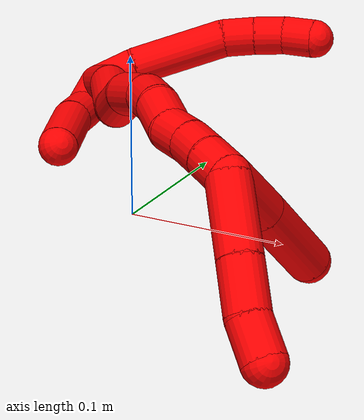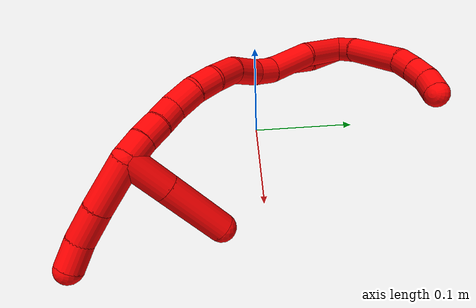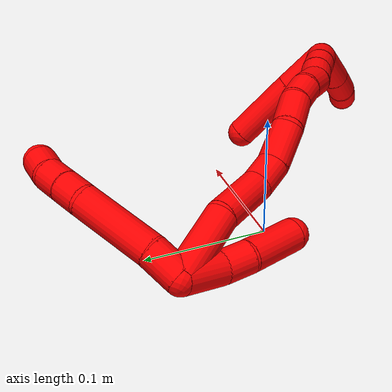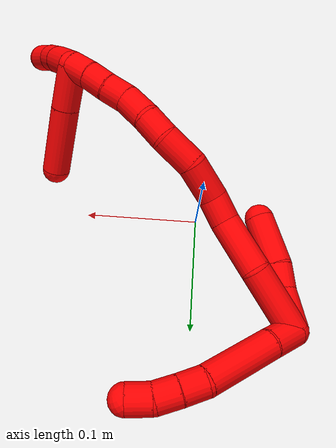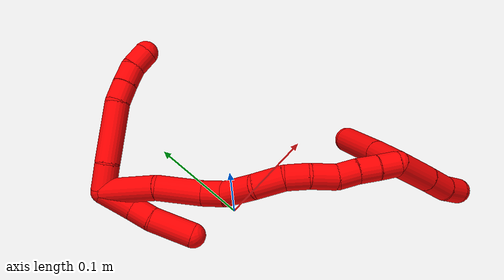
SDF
<sdf version="1.7">
 <world name="default">
  <model name="2">
   <static>0</static>
   <link name="2">
    <collision name="collision-cylinder-e_1_2_8">
     <pose>0.006121 0.010923 0.005271 -1.1212 0.467395 -0.296689</pose>
     <geometry><cylinder><radius>0.0125</radius><length>0.02717</length></cylinder></geometry>
     <surface>
      <friction><ode><mu>1.16</mu><mu2>1.16</mu2><slip1>0</slip1><slip2>0</slip2></ode></friction>
      <contact><ode><kp>1e+06</kp><kd>1</kd><max_vel>0</max_vel><min_depth>0.001</min_depth></ode></contact>
     </surface>
    </collision>
    <visual name="visual-cylinder-e_1_2_8">
     <pose>0.006121 0.010923 0.005271 -1.1212 0.467395 -0.296689</pose>
     <geometry><cylinder><radius>0.0125</radius><length>0.02717</length></cylinder></geometry>
     <material><ambient>1 0 0 1</ambient></material>
    </visual>
    <collision name="collision-cylinder-e_2_8_9">
     <pose>0.029837 0.045244 0.020459 -1.1699 0.605565 -0.408012</pose>
     <geometry><cylinder><radius>0.0125</radius><length>0.061819</length></cylinder></geometry>
     <surface>
      <friction><ode><mu>1.16</mu><mu2>1.16</mu2><slip1>0</slip1><slip2>0</slip2></ode></friction>
      <contact><ode><kp>1e+06</kp><kd>1</kd><max_vel>0</max_vel><min_depth>0.001</min_depth></ode></contact>
     </surface>
    </collision>
    <visual name="visual-cylinder-e_2_8_9">
     <pose>0.029837 0.045244 0.020459 -1.1699 0.605565 -0.408012</pose>
     <geometry><cylinder><radius>0.0125</radius><length>0.061819</length></cylinder></geometry>
     <material><ambient>1 0 0 1</ambient></material>
    </visual>
    <collision name="collision-cylinder-e_3_9_10">
     <pose>0.054912 0.074431 0.03426 -0.97996 0.82065 -0.455976</pose>
     <geometry><cylinder><radius>0.0125</radius><length>0.02045</length></cylinder></geometry>
     <surface>
      <friction><ode><mu>1.16</mu><mu2>1.16</mu2><slip1>0</slip1><slip2>0</slip2></ode></friction>
      <contact><ode><kp>1e+06</kp><kd>1</kd><max_vel>0</max_vel><min_depth>0.001</min_depth></ode></contact>
     </surface>
    </collision>
    <visual name="visual-cylinder-e_3_9_10">
     <pose>0.054912 0.074431 0.03426 -0.97996 0.82065 -0.455976</pose>
     <geometry><cylinder><radius>0.0125</radius><length>0.02045</length></cylinder></geometry>
     <material><ambient>1 0 0 1</ambient></material>
    </visual>
    <collision name="collision-cylinder-e_4_10_11">
     <pose>0.070031 0.08536 0.042066 -0.918874 0.86838 -0.451026</pose>
     <geometry><cylinder><radius>0.0125</radius><length>0.020015</length></cylinder></geometry>
     <surface>
      <friction><ode><mu>1.16</mu><mu2>1.16</mu2><slip1>0</slip1><slip2>0</slip2></ode></friction>
      <contact><ode><kp>1e+06</kp><kd>1</kd><max_vel>0</max_vel><min_depth>0.001</min_depth></ode></contact>
     </surface>
    </collision>
    <visual name="visual-cylinder-e_4_10_11">
     <pose>0.070031 0.08536 0.042066 -0.918874 0.86838 -0.451026</pose>
     <geometry><cylinder><radius>0.0125</radius><length>0.020015</length></cylinder></geometry>
     <material><ambient>1 0 0 1</ambient></material>
    </visual>
    <collision name="collision-cylinder-e_5_11_6">
     <pose>0.085593 0.093584 0.051753 -0.491352 0.880895 -0.235271</pose>
     <geometry><cylinder><radius>0.0125</radius><length>0.020545</length></cylinder></geometry>
     <surface>
      <friction><ode><mu>1.16</mu><mu2>1.16</mu2><slip1>0</slip1><slip2>0</slip2></ode></friction>
      <contact><ode><kp>1e+06</kp><kd>1</kd><max_vel>0</max_vel><min_depth>0.001</min_depth></ode></contact>
     </surface>
    </collision>
    <visual name="visual-cylinder-e_5_11_6">
     <pose>0.085593 0.093584 0.051753 -0.491352 0.880895 -0.235271</pose>
     <geometry><cylinder><radius>0.0125</radius><length>0.020545</length></cylinder></geometry>
     <material><ambient>1 0 0 1</ambient></material>
    </visual>
    <collision name="collision-cylinder-e_1_2_12">
     <pose>0.000458 -0.013127 0.010934 0.876307 0.02682 0.012566</pose>
     <geometry><cylinder><radius>0.0125</radius><length>0.034181</length></cylinder></geometry>
     <surface>
      <friction><ode><mu>1.16</mu><mu2>1.16</mu2><slip1>0</slip1><slip2>0</slip2></ode></friction>
      <contact><ode><kp>1e+06</kp><kd>1</kd><max_vel>0</max_vel><min_depth>0.001</min_depth></ode></contact>
     </surface>
    </collision>
    <visual name="visual-cylinder-e_1_2_12">
     <pose>0.000458 -0.013127 0.010934 0.876307 0.02682 0.012566</pose>
     <geometry><cylinder><radius>0.0125</radius><length>0.034181</length></cylinder></geometry>
     <material><ambient>1 0 0 1</ambient></material>
    </visual>
    <collision name="collision-cylinder-e_2_12_13">
     <pose>-0.000943 -0.033697 0.029993 0.741547 -0.167181 -0.065121</pose>
     <geometry><cylinder><radius>0.0125</radius><length>0.022347</length></cylinder></geometry>
     <surface>
      <friction><ode><mu>1.16</mu><mu2>1.16</mu2><slip1>0</slip1><slip2>0</slip2></ode></friction>
      <contact><ode><kp>1e+06</kp><kd>1</kd><max_vel>0</max_vel><min_depth>0.001</min_depth></ode></contact>
     </surface>
    </collision>
    <visual name="visual-cylinder-e_2_12_13">
     <pose>-0.000943 -0.033697 0.029993 0.741547 -0.167181 -0.065121</pose>
     <geometry><cylinder><radius>0.0125</radius><length>0.022347</length></cylinder></geometry>
     <material><ambient>1 0 0 1</ambient></material>
    </visual>
    <collision name="collision-cylinder-e_3_13_5">
     <pose>-0.002251 -0.055173 0.054705 0.702235 0.025362 0.009291</pose>
     <geometry><cylinder><radius>0.0125</radius><length>0.043471</length></cylinder></geometry>
     <surface>
      <friction><ode><mu>1.16</mu><mu2>1.16</mu2><slip1>0</slip1><slip2>0</slip2></ode></friction>
      <contact><ode><kp>1e+06</kp><kd>1</kd><max_vel>0</max_vel><min_depth>0.001</min_depth></ode></contact>
     </surface>
    </collision>
    <visual name="visual-cylinder-e_3_13_5">
     <pose>-0.002251 -0.055173 0.054705 0.702235 0.025362 0.009291</pose>
     <geometry><cylinder><radius>0.0125</radius><length>0.043471</length></cylinder></geometry>
     <material><ambient>1 0 0 1</ambient></material>
    </visual>
    <collision name="collision-cylinder-e_1_2_14">
     <pose>0.001262 -0.006349 0.027851 0.224137 0.04416 0.004971</pose>
     <geometry><cylinder><radius>0.0125</radius><length>0.057186</length></cylinder></geometry>
     <surface>
      <friction><ode><mu>1.16</mu><mu2>1.16</mu2><slip1>0</slip1><slip2>0</slip2></ode></friction>
      <contact><ode><kp>1e+06</kp><kd>1</kd><max_vel>0</max_vel><min_depth>0.001</min_depth></ode></contact>
     </surface>
    </collision>
    <visual name="visual-cylinder-e_1_2_14">
     <pose>0.001262 -0.006349 0.027851 0.224137 0.04416 0.004971</pose>
     <geometry><cylinder><radius>0.0125</radius><length>0.057186</length></cylinder></geometry>
     <material><ambient>1 0 0 1</ambient></material>
    </visual>
    <collision name="collision-cylinder-e_2_14_15">
     <pose>0.006405 -0.023578 0.075742 0.497389 0.168565 0.042903</pose>
     <geometry><cylinder><radius>0.0125</radius><length>0.046263</length></cylinder></geometry>
     <surface>
      <friction><ode><mu>1.16</mu><mu2>1.16</mu2><slip1>0</slip1><slip2>0</slip2></ode></friction>
      <contact><ode><kp>1e+06</kp><kd>1</kd><max_vel>0</max_vel><min_depth>0.001</min_depth></ode></contact>
     </surface>
    </collision>
    <visual name="visual-cylinder-e_2_14_15">
     <pose>0.006405 -0.023578 0.075742 0.497389 0.168565 0.042903</pose>
     <geometry><cylinder><radius>0.0125</radius><length>0.046263</length></cylinder></geometry>
     <material><ambient>1 0 0 1</ambient></material>
    </visual>
    <collision name="collision-cylinder-e_3_15_16">
     <pose>0.009892 -0.037606 0.106757 0.279304 -0.034534 -0.004855</pose>
     <geometry><cylinder><radius>0.0125</radius><length>0.022847</length></cylinder></geometry>
     <surface>
      <friction><ode><mu>1.16</mu><mu2>1.16</mu2><slip1>0</slip1><slip2>0</slip2></ode></friction>
      <contact><ode><kp>1e+06</kp><kd>1</kd><max_vel>0</max_vel><min_depth>0.001</min_depth></ode></contact>
     </surface>
    </collision>
    <visual name="visual-cylinder-e_3_15_16">
     <pose>0.009892 -0.037606 0.106757 0.279304 -0.034534 -0.004855</pose>
     <geometry><cylinder><radius>0.0125</radius><length>0.022847</length></cylinder></geometry>
     <material><ambient>1 0 0 1</ambient></material>
    </visual>
    <collision name="collision-cylinder-e_4_16_17">
     <pose>0.008459 -0.040651 0.134149 -0.006235 -0.063159 0.000197</pose>
     <geometry><cylinder><radius>0.0125</radius><length>0.032904</length></cylinder></geometry>
     <surface>
      <friction><ode><mu>1.16</mu><mu2>1.16</mu2><slip1>0</slip1><slip2>0</slip2></ode></friction>
      <contact><ode><kp>1e+06</kp><kd>1</kd><max_vel>0</max_vel><min_depth>0.001</min_depth></ode></contact>
     </surface>
    </collision>
    <visual name="visual-cylinder-e_4_16_17">
     <pose>0.008459 -0.040651 0.134149 -0.006235 -0.063159 0.000197</pose>
     <geometry><cylinder><radius>0.0125</radius><length>0.032904</length></cylinder></geometry>
     <material><ambient>1 0 0 1</ambient></material>
    </visual>
    <collision name="collision-cylinder-e_5_17_18">
     <pose>0.011168 -0.041815 0.165215 0.086226 0.249616 0.010825</pose>
     <geometry><cylinder><radius>0.0125</radius><length>0.030344</length></cylinder></geometry>
     <surface>
      <friction><ode><mu>1.16</mu><mu2>1.16</mu2><slip1>0</slip1><slip2>0</slip2></ode></friction>
      <contact><ode><kp>1e+06</kp><kd>1</kd><max_vel>0</max_vel><min_depth>0.001</min_depth></ode></contact>
     </surface>
    </collision>
    <visual name="visual-cylinder-e_5_17_18">
     <pose>0.011168 -0.041815 0.165215 0.086226 0.249616 0.010825</pose>
     <geometry><cylinder><radius>0.0125</radius><length>0.030344</length></cylinder></geometry>
     <material><ambient>1 0 0 1</ambient></material>
    </visual>
    <collision name="collision-cylinder-e_6_18_19">
     <pose>0.018215 -0.046874 0.19024 0.350368 0.290088 0.051697</pose>
     <geometry><cylinder><radius>0.0125</radius><length>0.023061</length></cylinder></geometry>
     <surface>
      <friction><ode><mu>1.16</mu><mu2>1.16</mu2><slip1>0</slip1><slip2>0</slip2></ode></friction>
      <contact><ode><kp>1e+06</kp><kd>1</kd><max_vel>0</max_vel><min_depth>0.001</min_depth></ode></contact>
     </surface>
    </collision>
    <visual name="visual-cylinder-e_6_18_19">
     <pose>0.018215 -0.046874 0.19024 0.350368 0.290088 0.051697</pose>
     <geometry><cylinder><radius>0.0125</radius><length>0.023061</length></cylinder></geometry>
     <material><ambient>1 0 0 1</ambient></material>
    </visual>
    <collision name="collision-cylinder-e_7_19_20">
     <pose>0.026971 -0.056962 0.210528 0.565984 0.43517 0.128405</pose>
     <geometry><cylinder><radius>0.0125</radius><length>0.025895</length></cylinder></geometry>
     <surface>
      <friction><ode><mu>1.16</mu><mu2>1.16</mu2><slip1>0</slip1><slip2>0</slip2></ode></friction>
      <contact><ode><kp>1e+06</kp><kd>1</kd><max_vel>0</max_vel><min_depth>0.001</min_depth></ode></contact>
     </surface>
    </collision>
    <visual name="visual-cylinder-e_7_19_20">
     <pose>0.026971 -0.056962 0.210528 0.565984 0.43517 0.128405</pose>
     <geometry><cylinder><radius>0.0125</radius><length>0.025895</length></cylinder></geometry>
     <material><ambient>1 0 0 1</ambient></material>
    </visual>
    <collision name="collision-cylinder-e_8_20_21">
     <pose>0.037675 -0.065292 0.228976 0.233838 0.538657 0.064821</pose>
     <geometry><cylinder><radius>0.0125</radius><length>0.020452</length></cylinder></geometry>
     <surface>
      <friction><ode><mu>1.16</mu><mu2>1.16</mu2><slip1>0</slip1><slip2>0</slip2></ode></friction>
      <contact><ode><kp>1e+06</kp><kd>1</kd><max_vel>0</max_vel><min_depth>0.001</min_depth></ode></contact>
     </surface>
    </collision>
    <visual name="visual-cylinder-e_8_20_21">
     <pose>0.037675 -0.065292 0.228976 0.233838 0.538657 0.064821</pose>
     <geometry><cylinder><radius>0.0125</radius><length>0.020452</length></cylinder></geometry>
     <material><ambient>1 0 0 1</ambient></material>
    </visual>
    <collision name="collision-cylinder-e_9_21_22">
     <pose>0.047978 -0.070372 0.245863 0.34993 0.517449 0.0935</pose>
     <geometry><cylinder><radius>0.0125</radius><length>0.02045</length></cylinder></geometry>
     <surface>
      <friction><ode><mu>1.16</mu><mu2>1.16</mu2><slip1>0</slip1><slip2>0</slip2></ode></friction>
      <contact><ode><kp>1e+06</kp><kd>1</kd><max_vel>0</max_vel><min_depth>0.001</min_depth></ode></contact>
     </surface>
    </collision>
    <visual name="visual-cylinder-e_9_21_22">
     <pose>0.047978 -0.070372 0.245863 0.34993 0.517449 0.0935</pose>
     <geometry><cylinder><radius>0.0125</radius><length>0.02045</length></cylinder></geometry>
     <material><ambient>1 0 0 1</ambient></material>
    </visual>
    <collision name="collision-cylinder-e_10_22_1">
     <pose>0.058863 -0.076541 0.262109 0.376461 0.601351 0.117993</pose>
     <geometry><cylinder><radius>0.0125</radius><length>0.020598</length></cylinder></geometry>
     <surface>
      <friction><ode><mu>1.16</mu><mu2>1.16</mu2><slip1>0</slip1><slip2>0</slip2></ode></friction>
      <contact><ode><kp>1e+06</kp><kd>1</kd><max_vel>0</max_vel><min_depth>0.001</min_depth></ode></contact>
     </surface>
    </collision>
    <visual name="visual-cylinder-e_10_22_1">
     <pose>0.058863 -0.076541 0.262109 0.376461 0.601351 0.117993</pose>
     <geometry><cylinder><radius>0.0125</radius><length>0.020598</length></cylinder></geometry>
     <material><ambient>1 0 0 1</ambient></material>
    </visual>
    <collision name="collision-cylinder-e_1_1_23">
     <pose>0.078096 -0.097026 0.276293 1.22344 0.62794 0.447915</pose>
     <geometry><cylinder><radius>0.0125</radius><length>0.045638</length></cylinder></geometry>
     <surface>
      <friction><ode><mu>1.16</mu><mu2>1.16</mu2><slip1>0</slip1><slip2>0</slip2></ode></friction>
      <contact><ode><kp>1e+06</kp><kd>1</kd><max_vel>0</max_vel><min_depth>0.001</min_depth></ode></contact>
     </surface>
    </collision>
    <visual name="visual-cylinder-e_1_1_23">
     <pose>0.078096 -0.097026 0.276293 1.22344 0.62794 0.447915</pose>
     <geometry><cylinder><radius>0.0125</radius><length>0.045638</length></cylinder></geometry>
     <material><ambient>1 0 0 1</ambient></material>
    </visual>
    <collision name="collision-cylinder-e_2_23_24">
     <pose>0.100593 -0.125897 0.286133 1.27124 0.646602 0.484668</pose>
     <geometry><cylinder><radius>0.0125</radius><length>0.030181</length></cylinder></geometry>
     <surface>
      <friction><ode><mu>1.16</mu><mu2>1.16</mu2><slip1>0</slip1><slip2>0</slip2></ode></friction>
      <contact><ode><kp>1e+06</kp><kd>1</kd><max_vel>0</max_vel><min_depth>0.001</min_depth></ode></contact>
     </surface>
    </collision>
    <visual name="visual-cylinder-e_2_23_24">
     <pose>0.100593 -0.125897 0.286133 1.27124 0.646602 0.484668</pose>
     <geometry><cylinder><radius>0.0125</radius><length>0.030181</length></cylinder></geometry>
     <material><ambient>1 0 0 1</ambient></material>
    </visual>
    <collision name="collision-cylinder-e_3_24_4">
     <pose>0.118532 -0.1449 0.293115 1.14177 0.820808 0.54497</pose>
     <geometry><cylinder><radius>0.0125</radius><length>0.024181</length></cylinder></geometry>
     <surface>
      <friction><ode><mu>1.16</mu><mu2>1.16</mu2><slip1>0</slip1><slip2>0</slip2></ode></friction>
      <contact><ode><kp>1e+06</kp><kd>1</kd><max_vel>0</max_vel><min_depth>0.001</min_depth></ode></contact>
     </surface>
    </collision>
    <visual name="visual-cylinder-e_3_24_4">
     <pose>0.118532 -0.1449 0.293115 1.14177 0.820808 0.54497</pose>
     <geometry><cylinder><radius>0.0125</radius><length>0.024181</length></cylinder></geometry>
     <material><ambient>1 0 0 1</ambient></material>
    </visual>
    <collision name="collision-cylinder-e_1_1_25">
     <pose>0.079306 -0.077569 0.257137 -2.9803 0.842347 -2.7846</pose>
     <geometry><cylinder><radius>0.0125</radius><length>0.039174</length></cylinder></geometry>
     <surface>
      <friction><ode><mu>1.16</mu><mu2>1.16</mu2><slip1>0</slip1><slip2>0</slip2></ode></friction>
      <contact><ode><kp>1e+06</kp><kd>1</kd><max_vel>0</max_vel><min_depth>0.001</min_depth></ode></contact>
     </surface>
    </collision>
    <visual name="visual-cylinder-e_1_1_25">
     <pose>0.079306 -0.077569 0.257137 -2.9803 0.842347 -2.7846</pose>
     <geometry><cylinder><radius>0.0125</radius><length>0.039174</length></cylinder></geometry>
     <material><ambient>1 0 0 1</ambient></material>
    </visual>
    <collision name="collision-cylinder-e_2_25_3">
     <pose>0.116403 -0.072791 0.223961 -3.01016 0.83189 -2.84579</pose>
     <geometry><cylinder><radius>0.0125</radius><length>0.060826</length></cylinder></geometry>
     <surface>
      <friction><ode><mu>1.16</mu><mu2>1.16</mu2><slip1>0</slip1><slip2>0</slip2></ode></friction>
      <contact><ode><kp>1e+06</kp><kd>1</kd><max_vel>0</max_vel><min_depth>0.001</min_depth></ode></contact>
     </surface>
    </collision>
    <visual name="visual-cylinder-e_2_25_3">
     <pose>0.116403 -0.072791 0.223961 -3.01016 0.83189 -2.84579</pose>
     <geometry><cylinder><radius>0.0125</radius><length>0.060826</length></cylinder></geometry>
     <material><ambient>1 0 0 1</ambient></material>
    </visual>
    <collision name="collision-sphere-3">
     <pose>0.138885 -0.070106 0.203655 0 -0 0</pose>
     <geometry><sphere><radius>0.0125</radius></sphere></geometry>
     <surface>
      <friction><ode><mu>1.16</mu><mu2>1.16</mu2><slip1>0</slip1><slip2>0</slip2></ode></friction>
      <contact><ode><kp>1e+06</kp><kd>1</kd><max_vel>0</max_vel><min_depth>0.001</min_depth></ode></contact>
     </surface>
    </collision>
    <visual name="visual-sphere-3">
     <pose>0.138885 -0.070106 0.203655 0 -0 0</pose>
     <geometry><sphere><radius>0.0125</radius></sphere></geometry>
     <material><ambient>1 0 0 1</ambient></material>
    </visual>
    <collision name="collision-sphere-25">
     <pose>0.093922 -0.075475 0.244267 0 -0 0</pose>
     <geometry><sphere><radius>0.0125</radius></sphere></geometry>
     <surface>
      <friction><ode><mu>1.16</mu><mu2>1.16</mu2><slip1>0</slip1><slip2>0</slip2></ode></friction>
      <contact><ode><kp>1e+06</kp><kd>1</kd><max_vel>0</max_vel><min_depth>0.001</min_depth></ode></contact>
     </surface>
    </collision>
    <visual name="visual-sphere-25">
     <pose>0.093922 -0.075475 0.244267 0 -0 0</pose>
     <geometry><sphere><radius>0.0125</radius></sphere></geometry>
     <material><ambient>1 0 0 1</ambient></material>
    </visual>
    <collision name="collision-sphere-4">
     <pose>0.127378 -0.152394 0.296544 0 -0 0</pose>
     <geometry><sphere><radius>0.0125</radius></sphere></geometry>
     <surface>
      <friction><ode><mu>1.16</mu><mu2>1.16</mu2><slip1>0</slip1><slip2>0</slip2></ode></friction>
      <contact><ode><kp>1e+06</kp><kd>1</kd><max_vel>0</max_vel><min_depth>0.001</min_depth></ode></contact>
     </surface>
    </collision>
    <visual name="visual-sphere-4">
     <pose>0.127378 -0.152394 0.296544 0 -0 0</pose>
     <geometry><sphere><radius>0.0125</radius></sphere></geometry>
     <material><ambient>1 0 0 1</ambient></material>
    </visual>
    <collision name="collision-sphere-24">
     <pose>0.109685 -0.137405 0.289687 0 -0 0</pose>
     <geometry><sphere><radius>0.0125</radius></sphere></geometry>
     <surface>
      <friction><ode><mu>1.16</mu><mu2>1.16</mu2><slip1>0</slip1><slip2>0</slip2></ode></friction>
      <contact><ode><kp>1e+06</kp><kd>1</kd><max_vel>0</max_vel><min_depth>0.001</min_depth></ode></contact>
     </surface>
    </collision>
    <visual name="visual-sphere-24">
     <pose>0.109685 -0.137405 0.289687 0 -0 0</pose>
     <geometry><sphere><radius>0.0125</radius></sphere></geometry>
     <material><ambient>1 0 0 1</ambient></material>
    </visual>
    <collision name="collision-sphere-23">
     <pose>0.091501 -0.114389 0.282579 0 -0 0</pose>
     <geometry><sphere><radius>0.0125</radius></sphere></geometry>
     <surface>
      <friction><ode><mu>1.16</mu><mu2>1.16</mu2><slip1>0</slip1><slip2>0</slip2></ode></friction>
      <contact><ode><kp>1e+06</kp><kd>1</kd><max_vel>0</max_vel><min_depth>0.001</min_depth></ode></contact>
     </surface>
    </collision>
    <visual name="visual-sphere-23">
     <pose>0.091501 -0.114389 0.282579 0 -0 0</pose>
     <geometry><sphere><radius>0.0125</radius></sphere></geometry>
     <material><ambient>1 0 0 1</ambient></material>
    </visual>
    <collision name="collision-sphere-1">
     <pose>0.06469 -0.079663 0.270007 0 -0 0</pose>
     <geometry><sphere><radius>0.0125</radius></sphere></geometry>
     <surface>
      <friction><ode><mu>1.16</mu><mu2>1.16</mu2><slip1>0</slip1><slip2>0</slip2></ode></friction>
      <contact><ode><kp>1e+06</kp><kd>1</kd><max_vel>0</max_vel><min_depth>0.001</min_depth></ode></contact>
     </surface>
    </collision>
    <visual name="visual-sphere-1">
     <pose>0.06469 -0.079663 0.270007 0 -0 0</pose>
     <geometry><sphere><radius>0.0125</radius></sphere></geometry>
     <material><ambient>1 0 0 1</ambient></material>
    </visual>
    <collision name="collision-sphere-22">
     <pose>0.053036 -0.073419 0.254211 0 -0 0</pose>
     <geometry><sphere><radius>0.0125</radius></sphere></geometry>
     <surface>
      <friction><ode><mu>1.16</mu><mu2>1.16</mu2><slip1>0</slip1><slip2>0</slip2></ode></friction>
      <contact><ode><kp>1e+06</kp><kd>1</kd><max_vel>0</max_vel><min_depth>0.001</min_depth></ode></contact>
     </surface>
    </collision>
    <visual name="visual-sphere-22">
     <pose>0.053036 -0.073419 0.254211 0 -0 0</pose>
     <geometry><sphere><radius>0.0125</radius></sphere></geometry>
     <material><ambient>1 0 0 1</ambient></material>
    </visual>
    <collision name="collision-sphere-21">
     <pose>0.04292 -0.067326 0.237515 0 -0 0</pose>
     <geometry><sphere><radius>0.0125</radius></sphere></geometry>
     <surface>
      <friction><ode><mu>1.16</mu><mu2>1.16</mu2><slip1>0</slip1><slip2>0</slip2></ode></friction>
      <contact><ode><kp>1e+06</kp><kd>1</kd><max_vel>0</max_vel><min_depth>0.001</min_depth></ode></contact>
     </surface>
    </collision>
    <visual name="visual-sphere-21">
     <pose>0.04292 -0.067326 0.237515 0 -0 0</pose>
     <geometry><sphere><radius>0.0125</radius></sphere></geometry>
     <material><ambient>1 0 0 1</ambient></material>
    </visual>
    <collision name="collision-sphere-6">
     <pose>0.093516 0.096669 0.057518 0 -0 0</pose>
     <geometry><sphere><radius>0.0125</radius></sphere></geometry>
     <surface>
      <friction><ode><mu>1.16</mu><mu2>1.16</mu2><slip1>0</slip1><slip2>0</slip2></ode></friction>
      <contact><ode><kp>1e+06</kp><kd>1</kd><max_vel>0</max_vel><min_depth>0.001</min_depth></ode></contact>
     </surface>
    </collision>
    <visual name="visual-sphere-6">
     <pose>0.093516 0.096669 0.057518 0 -0 0</pose>
     <geometry><sphere><radius>0.0125</radius></sphere></geometry>
     <material><ambient>1 0 0 1</ambient></material>
    </visual>
    <collision name="collision-sphere-11">
     <pose>0.077669 0.0905 0.045988 0 -0 0</pose>
     <geometry><sphere><radius>0.0125</radius></sphere></geometry>
     <surface>
      <friction><ode><mu>1.16</mu><mu2>1.16</mu2><slip1>0</slip1><slip2>0</slip2></ode></friction>
      <contact><ode><kp>1e+06</kp><kd>1</kd><max_vel>0</max_vel><min_depth>0.001</min_depth></ode></contact>
     </surface>
    </collision>
    <visual name="visual-sphere-11">
     <pose>0.077669 0.0905 0.045988 0 -0 0</pose>
     <geometry><sphere><radius>0.0125</radius></sphere></geometry>
     <material><ambient>1 0 0 1</ambient></material>
    </visual>
    <collision name="collision-sphere-10">
     <pose>0.062392 0.080221 0.038143 0 -0 0</pose>
     <geometry><sphere><radius>0.0125</radius></sphere></geometry>
     <surface>
      <friction><ode><mu>1.16</mu><mu2>1.16</mu2><slip1>0</slip1><slip2>0</slip2></ode></friction>
      <contact><ode><kp>1e+06</kp><kd>1</kd><max_vel>0</max_vel><min_depth>0.001</min_depth></ode></contact>
     </surface>
    </collision>
    <visual name="visual-sphere-10">
     <pose>0.062392 0.080221 0.038143 0 -0 0</pose>
     <geometry><sphere><radius>0.0125</radius></sphere></geometry>
     <material><ambient>1 0 0 1</ambient></material>
    </visual>
    <collision name="collision-sphere-9">
     <pose>0.047431 0.068642 0.030377 0 -0 0</pose>
     <geometry><sphere><radius>0.0125</radius></sphere></geometry>
     <surface>
      <friction><ode><mu>1.16</mu><mu2>1.16</mu2><slip1>0</slip1><slip2>0</slip2></ode></friction>
      <contact><ode><kp>1e+06</kp><kd>1</kd><max_vel>0</max_vel><min_depth>0.001</min_depth></ode></contact>
     </surface>
    </collision>
    <visual name="visual-sphere-9">
     <pose>0.047431 0.068642 0.030377 0 -0 0</pose>
     <geometry><sphere><radius>0.0125</radius></sphere></geometry>
     <material><ambient>1 0 0 1</ambient></material>
    </visual>
    <collision name="collision-sphere-2">
     <geometry><sphere><radius>0.0125</radius></sphere></geometry>
     <surface>
      <friction><ode><mu>1.16</mu><mu2>1.16</mu2><slip1>0</slip1><slip2>0</slip2></ode></friction>
      <contact><ode><kp>1e+06</kp><kd>1</kd><max_vel>0</max_vel><min_depth>0.001</min_depth></ode></contact>
     </surface>
    </collision>
    <visual name="visual-sphere-2">
     <geometry><sphere><radius>0.0125</radius></sphere></geometry>
     <material><ambient>1 0 0 1</ambient></material>
    </visual>
    <collision name="collision-sphere-19">
     <pose>0.021513 -0.050666 0.200618 0 -0 0</pose>
     <geometry><sphere><radius>0.0125</radius></sphere></geometry>
     <surface>
      <friction><ode><mu>1.16</mu><mu2>1.16</mu2><slip1>0</slip1><slip2>0</slip2></ode></friction>
      <contact><ode><kp>1e+06</kp><kd>1</kd><max_vel>0</max_vel><min_depth>0.001</min_depth></ode></contact>
     </surface>
    </collision>
    <visual name="visual-sphere-19">
     <pose>0.021513 -0.050666 0.200618 0 -0 0</pose>
     <geometry><sphere><radius>0.0125</radius></sphere></geometry>
     <material><ambient>1 0 0 1</ambient></material>
    </visual>
    <collision name="collision-sphere-8">
     <pose>0.012242 0.021846 0.010542 0 -0 0</pose>
     <geometry><sphere><radius>0.0125</radius></sphere></geometry>
     <surface>
      <friction><ode><mu>1.16</mu><mu2>1.16</mu2><slip1>0</slip1><slip2>0</slip2></ode></friction>
      <contact><ode><kp>1e+06</kp><kd>1</kd><max_vel>0</max_vel><min_depth>0.001</min_depth></ode></contact>
     </surface>
    </collision>
    <visual name="visual-sphere-8">
     <pose>0.012242 0.021846 0.010542 0 -0 0</pose>
     <geometry><sphere><radius>0.0125</radius></sphere></geometry>
     <material><ambient>1 0 0 1</ambient></material>
    </visual>
    <collision name="collision-sphere-12">
     <pose>0.000917 -0.026255 0.021868 0 -0 0</pose>
     <geometry><sphere><radius>0.0125</radius></sphere></geometry>
     <surface>
      <friction><ode><mu>1.16</mu><mu2>1.16</mu2><slip1>0</slip1><slip2>0</slip2></ode></friction>
      <contact><ode><kp>1e+06</kp><kd>1</kd><max_vel>0</max_vel><min_depth>0.001</min_depth></ode></contact>
     </surface>
    </collision>
    <visual name="visual-sphere-12">
     <pose>0.000917 -0.026255 0.021868 0 -0 0</pose>
     <geometry><sphere><radius>0.0125</radius></sphere></geometry>
     <material><ambient>1 0 0 1</ambient></material>
    </visual>
    <collision name="collision-sphere-13">
     <pose>-0.002802 -0.041138 0.038118 0 -0 0</pose>
     <geometry><sphere><radius>0.0125</radius></sphere></geometry>
     <surface>
      <friction><ode><mu>1.16</mu><mu2>1.16</mu2><slip1>0</slip1><slip2>0</slip2></ode></friction>
      <contact><ode><kp>1e+06</kp><kd>1</kd><max_vel>0</max_vel><min_depth>0.001</min_depth></ode></contact>
     </surface>
    </collision>
    <visual name="visual-sphere-13">
     <pose>-0.002802 -0.041138 0.038118 0 -0 0</pose>
     <geometry><sphere><radius>0.0125</radius></sphere></geometry>
     <material><ambient>1 0 0 1</ambient></material>
    </visual>
    <collision name="collision-sphere-5">
     <pose>-0.0017 -0.069209 0.071293 0 -0 0</pose>
     <geometry><sphere><radius>0.0125</radius></sphere></geometry>
     <surface>
      <friction><ode><mu>1.16</mu><mu2>1.16</mu2><slip1>0</slip1><slip2>0</slip2></ode></friction>
      <contact><ode><kp>1e+06</kp><kd>1</kd><max_vel>0</max_vel><min_depth>0.001</min_depth></ode></contact>
     </surface>
    </collision>
    <visual name="visual-sphere-5">
     <pose>-0.0017 -0.069209 0.071293 0 -0 0</pose>
     <geometry><sphere><radius>0.0125</radius></sphere></geometry>
     <material><ambient>1 0 0 1</ambient></material>
    </visual>
    <collision name="collision-sphere-14">
     <pose>0.002525 -0.012698 0.055701 0 -0 0</pose>
     <geometry><sphere><radius>0.0125</radius></sphere></geometry>
     <surface>
      <friction><ode><mu>1.16</mu><mu2>1.16</mu2><slip1>0</slip1><slip2>0</slip2></ode></friction>
      <contact><ode><kp>1e+06</kp><kd>1</kd><max_vel>0</max_vel><min_depth>0.001</min_depth></ode></contact>
     </surface>
    </collision>
    <visual name="visual-sphere-14">
     <pose>0.002525 -0.012698 0.055701 0 -0 0</pose>
     <geometry><sphere><radius>0.0125</radius></sphere></geometry>
     <material><ambient>1 0 0 1</ambient></material>
    </visual>
    <collision name="collision-sphere-15">
     <pose>0.010286 -0.034459 0.095783 0 -0 0</pose>
     <geometry><sphere><radius>0.0125</radius></sphere></geometry>
     <surface>
      <friction><ode><mu>1.16</mu><mu2>1.16</mu2><slip1>0</slip1><slip2>0</slip2></ode></friction>
      <contact><ode><kp>1e+06</kp><kd>1</kd><max_vel>0</max_vel><min_depth>0.001</min_depth></ode></contact>
     </surface>
    </collision>
    <visual name="visual-sphere-15">
     <pose>0.010286 -0.034459 0.095783 0 -0 0</pose>
     <geometry><sphere><radius>0.0125</radius></sphere></geometry>
     <material><ambient>1 0 0 1</ambient></material>
    </visual>
    <collision name="collision-sphere-16">
     <pose>0.009497 -0.040754 0.117731 0 -0 0</pose>
     <geometry><sphere><radius>0.0125</radius></sphere></geometry>
     <surface>
      <friction><ode><mu>1.16</mu><mu2>1.16</mu2><slip1>0</slip1><slip2>0</slip2></ode></friction>
      <contact><ode><kp>1e+06</kp><kd>1</kd><max_vel>0</max_vel><min_depth>0.001</min_depth></ode></contact>
     </surface>
    </collision>
    <visual name="visual-sphere-16">
     <pose>0.009497 -0.040754 0.117731 0 -0 0</pose>
     <geometry><sphere><radius>0.0125</radius></sphere></geometry>
     <material><ambient>1 0 0 1</ambient></material>
    </visual>
    <collision name="collision-sphere-17">
     <pose>0.00742 -0.040549 0.150568 0 -0 0</pose>
     <geometry><sphere><radius>0.0125</radius></sphere></geometry>
     <surface>
      <friction><ode><mu>1.16</mu><mu2>1.16</mu2><slip1>0</slip1><slip2>0</slip2></ode></friction>
      <contact><ode><kp>1e+06</kp><kd>1</kd><max_vel>0</max_vel><min_depth>0.001</min_depth></ode></contact>
     </surface>
    </collision>
    <visual name="visual-sphere-17">
     <pose>0.00742 -0.040549 0.150568 0 -0 0</pose>
     <geometry><sphere><radius>0.0125</radius></sphere></geometry>
     <material><ambient>1 0 0 1</ambient></material>
    </visual>
    <collision name="collision-sphere-18">
     <pose>0.014916 -0.043081 0.179862 0 -0 0</pose>
     <geometry><sphere><radius>0.0125</radius></sphere></geometry>
     <surface>
      <friction><ode><mu>1.16</mu><mu2>1.16</mu2><slip1>0</slip1><slip2>0</slip2></ode></friction>
      <contact><ode><kp>1e+06</kp><kd>1</kd><max_vel>0</max_vel><min_depth>0.001</min_depth></ode></contact>
     </surface>
    </collision>
    <visual name="visual-sphere-18">
     <pose>0.014916 -0.043081 0.179862 0 -0 0</pose>
     <geometry><sphere><radius>0.0125</radius></sphere></geometry>
     <material><ambient>1 0 0 1</ambient></material>
    </visual>
    <collision name="collision-sphere-20">
     <pose>0.032429 -0.063258 0.220437 0 -0 0</pose>
     <geometry><sphere><radius>0.0125</radius></sphere></geometry>
     <surface>
      <friction><ode><mu>1.16</mu><mu2>1.16</mu2><slip1>0</slip1><slip2>0</slip2></ode></friction>
      <contact><ode><kp>1e+06</kp><kd>1</kd><max_vel>0</max_vel><min_depth>0.001</min_depth></ode></contact>
     </surface>
    </collision>
    <visual name="visual-sphere-20">
     <pose>0.032429 -0.063258 0.220437 0 -0 0</pose>
     <geometry><sphere><radius>0.0125</radius></sphere></geometry>
     <material><ambient>1 0 0 1</ambient></material>
    </visual>
    <inertial>
     <pose>0.041518 -0.03517 0.135169 0 -0 0</pose>
     <mass>0.75</mass>
     <inertia><ixx>9e-05</ixx><ixy>0</ixy><ixz>0</ixz><iyy>9.1e-05</iyy><iyz>0</iyz><izz>-1.5e-05</izz></inertia>
    </inertial>
   </link>
   <pose>-0.080311 0.099109 0.042307 0.921175 0.649358 0.359444</pose>
  </model>
 </world>
</sdf>
